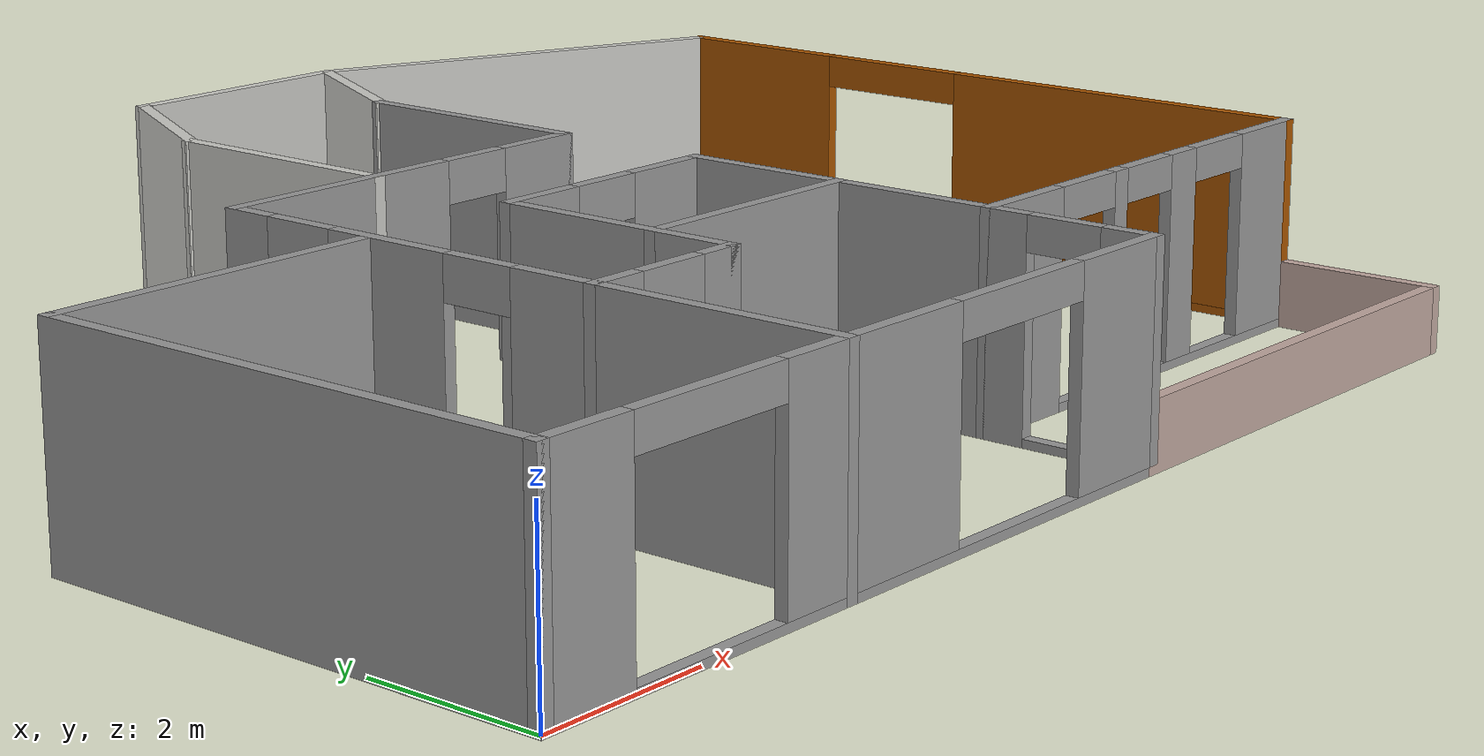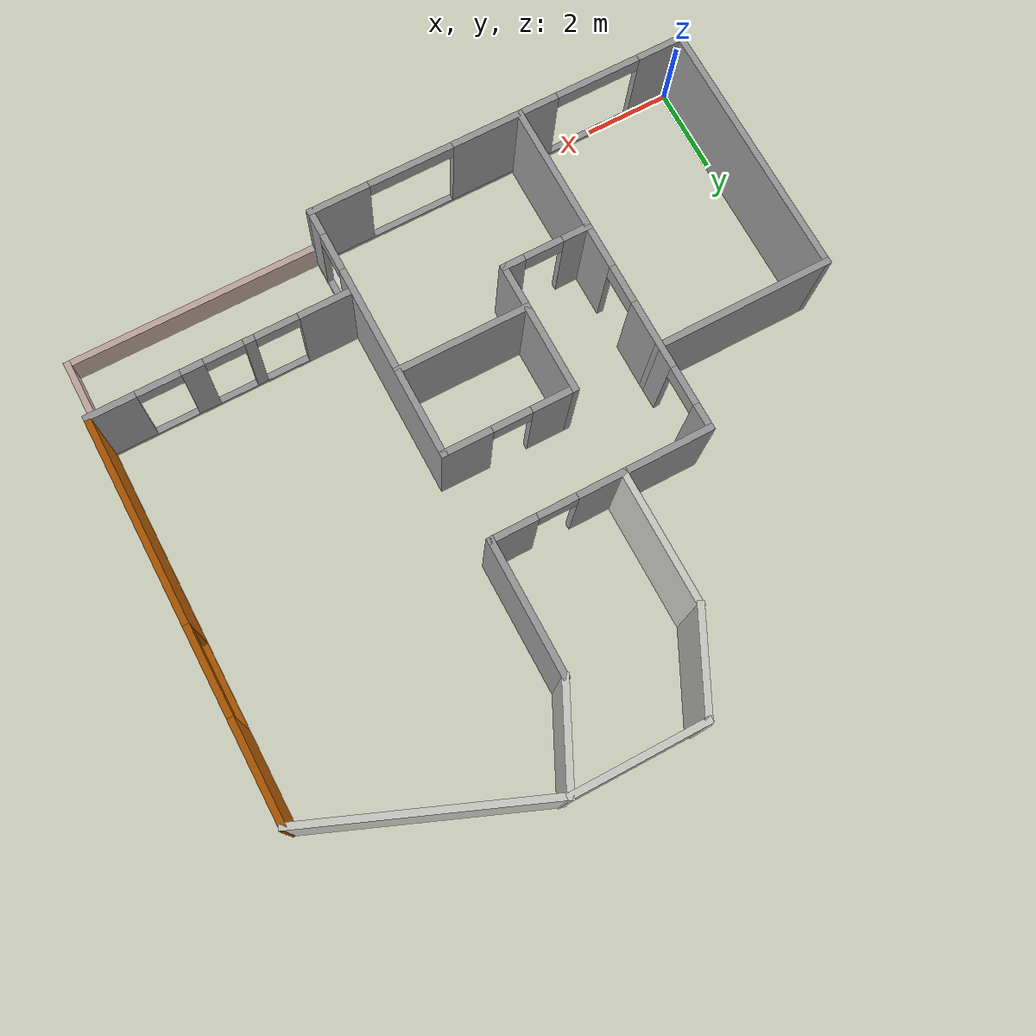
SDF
<?xml version='1.0'?>
<sdf version='1.6'>
  <model name='Building'>
    <pose frame=''>7.51124 6.51281 0 0 -0 0</pose>
    <link name='Wall_0'>
      <collision name='Wall_0_Collision'>
        <geometry>
          <box>
            <size>6.15 0.15 2.5</size>
          </box>
        </geometry>
        <pose frame=''>0 0 1.25 0 -0 0</pose>
      </collision>
      <visual name='Wall_0_Visual'>
        <pose frame=''>0 0 1.25 0 -0 0</pose>
        <geometry>
          <box>
            <size>6.15 0.15 2.5</size>
          </box>
        </geometry>
        <material>
          <script>
            <uri>file://media/materials/scripts/gazebo.material</uri>
            <name>Gazebo/Grey</name>
          </script>
          <ambient>1 1 1 1</ambient>
        </material>
        <meta>
          <layer>0</layer>
        </meta>
      </visual>
      <pose frame=''>-7.51124 -3.51281 0 0 -0 1.5708</pose>
    </link>
    <link name='Wall_12'>
      <pose frame=''>-3.01125 -6.51281 0 0 -0 0</pose>
      <visual name='Wall_12_Visual_0'>
        <pose frame=''>-3.99854 0 1.25 0 -0 0</pose>
        <geometry>
          <box>
            <size>1.15292 0.15 2.5</size>
          </box>
        </geometry>
        <material>
          <script>
            <uri>file://media/materials/scripts/gazebo.material</uri>
            <name>Gazebo/Grey</name>
          </script>
          <ambient>1 1 1 1</ambient>
        </material>
        <meta>
          <layer>0</layer>
        </meta>
      </visual>
      <collision name='Wall_12_Collision_0'>
        <geometry>
          <box>
            <size>1.15292 0.15 2.5</size>
          </box>
        </geometry>
        <pose frame=''>-3.99854 0 1.25 0 -0 0</pose>
      </collision>
      <visual name='Wall_12_Visual_1'>
        <pose frame=''>0.57646 0 0.05 0 -0 0</pose>
        <geometry>
          <box>
            <size>7.99708 0.15 0.1</size>
          </box>
        </geometry>
        <material>
          <script>
            <uri>file://media/materials/scripts/gazebo.material</uri>
            <name>Gazebo/Grey</name>
          </script>
          <ambient>1 1 1 1</ambient>
        </material>
        <meta>
          <layer>0</layer>
        </meta>
      </visual>
      <collision name='Wall_12_Collision_1'>
        <geometry>
          <box>
            <size>7.99708 0.15 0.1</size>
          </box>
        </geometry>
        <pose frame=''>0.57646 0 0.05 0 -0 0</pose>
      </collision>
      <visual name='Wall_12_Visual_2'>
        <pose frame=''>-0.143108 0 1.3 0 -0 0</pose>
        <geometry>
          <box>
            <size>2.55794 0.15 2.4</size>
          </box>
        </geometry>
        <material>
          <script>
            <uri>file://media/materials/scripts/gazebo.material</uri>
            <name>Gazebo/Grey</name>
          </script>
          <ambient>1 1 1 1</ambient>
        </material>
        <meta>
          <layer>0</layer>
        </meta>
      </visual>
      <collision name='Wall_12_Collision_2'>
        <geometry>
          <box>
            <size>2.55794 0.15 2.4</size>
          </box>
        </geometry>
        <pose frame=''>-0.143108 0 1.3 0 -0 0</pose>
      </collision>
      <visual name='Wall_12_Visual_3'>
        <pose frame=''>3.85543 0 1.3 0 -0 0</pose>
        <geometry>
          <box>
            <size>1.43914 0.15 2.4</size>
          </box>
        </geometry>
        <material>
          <script>
            <uri>file://media/materials/scripts/gazebo.material</uri>
            <name>Gazebo/Grey</name>
          </script>
          <ambient>1 1 1 1</ambient>
        </material>
        <meta>
          <layer>0</layer>
        </meta>
      </visual>
      <collision name='Wall_12_Collision_3'>
        <geometry>
          <box>
            <size>1.43914 0.15 2.4</size>
          </box>
        </geometry>
        <pose frame=''>3.85543 0 1.3 0 -0 0</pose>
      </collision>
      <visual name='Wall_12_Visual_4'>
        <pose frame=''>-2.42208 0 2.3 0 -0 0</pose>
        <geometry>
          <box>
            <size>2 0.15 0.4</size>
          </box>
        </geometry>
        <material>
          <script>
            <uri>file://media/materials/scripts/gazebo.material</uri>
            <name>Gazebo/Grey</name>
          </script>
          <ambient>1 1 1 1</ambient>
        </material>
        <meta>
          <layer>0</layer>
        </meta>
      </visual>
      <collision name='Wall_12_Collision_4'>
        <geometry>
          <box>
            <size>2 0.15 0.4</size>
          </box>
        </geometry>
        <pose frame=''>-2.42208 0 2.3 0 -0 0</pose>
      </collision>
      <visual name='Wall_12_Visual_5'>
        <pose frame=''>2.13586 0 2.3 0 -0 0</pose>
        <geometry>
          <box>
            <size>2 0.15 0.4</size>
          </box>
        </geometry>
        <material>
          <script>
            <uri>file://media/materials/scripts/gazebo.material</uri>
            <name>Gazebo/Grey</name>
          </script>
          <ambient>1 1 1 1</ambient>
        </material>
        <meta>
          <layer>0</layer>
        </meta>
      </visual>
      <collision name='Wall_12_Collision_5'>
        <geometry>
          <box>
            <size>2 0.15 0.4</size>
          </box>
        </geometry>
        <pose frame=''>2.13586 0 2.3 0 -0 0</pose>
      </collision>
    </link>
    <link name='Wall_26'>
      <pose frame=''>1.48876 -3.51281 0 0 0 -1.5708</pose>
      <visual name='Wall_26_Visual_0'>
        <pose frame=''>-0.780552 0 1.25 0 -0 0</pose>
        <geometry>
          <box>
            <size>4.58889 0.15 2.5</size>
          </box>
        </geometry>
        <material>
          <script>
            <uri>file://media/materials/scripts/gazebo.material</uri>
            <name>Gazebo/Grey</name>
          </script>
          <ambient>1 1 1 1</ambient>
        </material>
        <meta>
          <layer>0</layer>
        </meta>
      </visual>
      <collision name='Wall_26_Collision_0'>
        <geometry>
          <box>
            <size>4.58889 0.15 2.5</size>
          </box>
        </geometry>
        <pose frame=''>-0.780552 0 1.25 0 -0 0</pose>
      </collision>
      <visual name='Wall_26_Visual_1'>
        <pose frame=''>2.29445 0 0.05 0 -0 0</pose>
        <geometry>
          <box>
            <size>1.5611 0.15 0.1</size>
          </box>
        </geometry>
        <material>
          <script>
            <uri>file://media/materials/scripts/gazebo.material</uri>
            <name>Gazebo/Grey</name>
          </script>
          <ambient>1 1 1 1</ambient>
        </material>
        <meta>
          <layer>0</layer>
        </meta>
      </visual>
      <collision name='Wall_26_Collision_1'>
        <geometry>
          <box>
            <size>1.5611 0.15 0.1</size>
          </box>
        </geometry>
        <pose frame=''>2.29445 0 0.05 0 -0 0</pose>
      </collision>
      <visual name='Wall_26_Visual_2'>
        <pose frame=''>2.74445 0 1.3 0 -0 0</pose>
        <geometry>
          <box>
            <size>0.661105 0.15 2.4</size>
          </box>
        </geometry>
        <material>
          <script>
            <uri>file://media/materials/scripts/gazebo.material</uri>
            <name>Gazebo/Grey</name>
          </script>
          <ambient>1 1 1 1</ambient>
        </material>
        <meta>
          <layer>0</layer>
        </meta>
      </visual>
      <collision name='Wall_26_Collision_2'>
        <geometry>
          <box>
            <size>0.661105 0.15 2.4</size>
          </box>
        </geometry>
        <pose frame=''>2.74445 0 1.3 0 -0 0</pose>
      </collision>
      <visual name='Wall_26_Visual_3'>
        <pose frame=''>1.96389 0 2.3 0 -0 0</pose>
        <geometry>
          <box>
            <size>0.9 0.15 0.4</size>
          </box>
        </geometry>
        <material>
          <script>
            <uri>file://media/materials/scripts/gazebo.material</uri>
            <name>Gazebo/Grey</name>
          </script>
          <ambient>1 1 1 1</ambient>
        </material>
        <meta>
          <layer>0</layer>
        </meta>
      </visual>
      <collision name='Wall_26_Collision_3'>
        <geometry>
          <box>
            <size>0.9 0.15 0.4</size>
          </box>
        </geometry>
        <pose frame=''>1.96389 0 2.3 0 -0 0</pose>
      </collision>
    </link>
    <link name='Wall_28'>
      <collision name='Wall_28_Collision'>
        <geometry>
          <box>
            <size>3.15 0.15 2.5</size>
          </box>
        </geometry>
        <pose frame=''>0 0 1.25 0 -0 0</pose>
      </collision>
      <visual name='Wall_28_Visual'>
        <pose frame=''>0 0 1.25 0 -0 0</pose>
        <geometry>
          <box>
            <size>3.15 0.15 2.5</size>
          </box>
        </geometry>
        <material>
          <script>
            <uri>file://media/materials/scripts/gazebo.material</uri>
            <name>Gazebo/Grey</name>
          </script>
          <ambient>1 1 1 1</ambient>
        </material>
        <meta>
          <layer>0</layer>
        </meta>
      </visual>
      <pose frame=''>1.48876 2.98719 0 0 -0 1.5708</pose>
    </link>
    <link name='Wall_30'>
      <collision name='Wall_30_Collision'>
        <geometry>
          <box>
            <size>2.38607 0.15 2.5</size>
          </box>
        </geometry>
        <pose frame=''>0 0 1.25 0 -0 0</pose>
      </collision>
      <visual name='Wall_30_Visual'>
        <pose frame=''>0 0 1.25 0 -0 0</pose>
        <geometry>
          <box>
            <size>2.38607 0.15 2.5</size>
          </box>
        </geometry>
        <material>
          <script>
            <uri>file://media/materials/scripts/gazebo.material</uri>
            <name>Gazebo/CeilingTiled</name>
          </script>
          <ambient>1 1 1 1</ambient>
        </material>
        <meta>
          <layer>0</layer>
        </meta>
      </visual>
      <pose frame=''>1.98876 5.48719 0 0 -0 1.10715</pose>
    </link>
    <link name='Wall_32'>
      <pose frame=''>7.48876 -0.012811 0 0 0 -1.5708</pose>
      <visual name='Wall_32_Visual_0'>
        <pose frame=''>-3.40699 0 1.25 0 -0 0</pose>
        <geometry>
          <box>
            <size>2.33601 0.15 2.5</size>
          </box>
        </geometry>
        <material>
          <script>
            <uri>file://media/materials/scripts/gazebo.material</uri>
            <name>Gazebo/Grey</name>
          </script>
          <ambient>0.666667 0.333333 0 1</ambient>
        </material>
        <meta>
          <layer>0</layer>
        </meta>
      </visual>
      <collision name='Wall_32_Collision_0'>
        <geometry>
          <box>
            <size>2.33601 0.15 2.5</size>
          </box>
        </geometry>
        <pose frame=''>-3.40699 0 1.25 0 -0 0</pose>
      </collision>
      <visual name='Wall_32_Visual_1'>
        <pose frame=''>1.16801 0 0.05 0 -0 0</pose>
        <geometry>
          <box>
            <size>6.81399 0.15 0.1</size>
          </box>
        </geometry>
        <material>
          <script>
            <uri>file://media/materials/scripts/gazebo.material</uri>
            <name>Gazebo/Grey</name>
          </script>
          <ambient>0.666667 0.333333 0 1</ambient>
        </material>
        <meta>
          <layer>0</layer>
        </meta>
      </visual>
      <collision name='Wall_32_Collision_1'>
        <geometry>
          <box>
            <size>6.81399 0.15 0.1</size>
          </box>
        </geometry>
        <pose frame=''>1.16801 0 0.05 0 -0 0</pose>
      </collision>
      <visual name='Wall_32_Visual_2'>
        <pose frame=''>2.16801 0 1.3 0 -0 0</pose>
        <geometry>
          <box>
            <size>4.81399 0.15 2.4</size>
          </box>
        </geometry>
        <material>
          <script>
            <uri>file://media/materials/scripts/gazebo.material</uri>
            <name>Gazebo/Grey</name>
          </script>
          <ambient>0.666667 0.333333 0 1</ambient>
        </material>
        <meta>
          <layer>0</layer>
        </meta>
      </visual>
      <collision name='Wall_32_Collision_2'>
        <geometry>
          <box>
            <size>4.81399 0.15 2.4</size>
          </box>
        </geometry>
        <pose frame=''>2.16801 0 1.3 0 -0 0</pose>
      </collision>
      <visual name='Wall_32_Visual_3'>
        <pose frame=''>-1.23899 0 2.3 0 -0 0</pose>
        <geometry>
          <box>
            <size>2 0.15 0.4</size>
          </box>
        </geometry>
        <material>
          <script>
            <uri>file://media/materials/scripts/gazebo.material</uri>
            <name>Gazebo/Grey</name>
          </script>
          <ambient>0.666667 0.333333 0 1</ambient>
        </material>
        <meta>
          <layer>0</layer>
        </meta>
      </visual>
      <collision name='Wall_32_Collision_3'>
        <geometry>
          <box>
            <size>2 0.15 0.4</size>
          </box>
        </geometry>
        <pose frame=''>-1.23899 0 2.3 0 -0 0</pose>
      </collision>
    </link>
    <link name='Wall_34'>
      <collision name='Wall_34_Collision'>
        <geometry>
          <box>
            <size>6.15 0.15 0.8</size>
          </box>
        </geometry>
        <pose frame=''>0 0 0.4 0 -0 0</pose>
      </collision>
      <visual name='Wall_34_Visual'>
        <pose frame=''>0 0 0.4 0 -0 0</pose>
        <geometry>
          <box>
            <size>6.15 0.15 0.8</size>
          </box>
        </geometry>
        <material>
          <script>
            <uri>file://media/materials/scripts/gazebo.material</uri>
            <name>Gazebo/Grey</name>
          </script>
          <ambient>0.760784 0.662745 0.627451 1</ambient>
        </material>
        <meta>
          <layer>0</layer>
        </meta>
      </visual>
      <pose frame=''>4.48876 -6.51281 0 0 -0 0</pose>
    </link>
    <link name='Wall_36'>
      <pose frame=''>4.48876 -4.51281 0 0 -0 0</pose>
      <visual name='Wall_36_Visual_0'>
        <pose frame=''>-2.40473 0 1.25 0 -0 0</pose>
        <geometry>
          <box>
            <size>1.34055 0.15 2.5</size>
          </box>
        </geometry>
        <material>
          <script>
            <uri>file://media/materials/scripts/gazebo.material</uri>
            <name>Gazebo/Grey</name>
          </script>
          <ambient>1 1 1 1</ambient>
        </material>
        <meta>
          <layer>0</layer>
        </meta>
      </visual>
      <collision name='Wall_36_Collision_0'>
        <geometry>
          <box>
            <size>1.34055 0.15 2.5</size>
          </box>
        </geometry>
        <pose frame=''>-2.40473 0 1.25 0 -0 0</pose>
      </collision>
      <visual name='Wall_36_Visual_1'>
        <pose frame=''>0.670272 0 0.05 0 -0 0</pose>
        <geometry>
          <box>
            <size>4.80945 0.15 0.1</size>
          </box>
        </geometry>
        <material>
          <script>
            <uri>file://media/materials/scripts/gazebo.material</uri>
            <name>Gazebo/Grey</name>
          </script>
          <ambient>1 1 1 1</ambient>
        </material>
        <meta>
          <layer>0</layer>
        </meta>
      </visual>
      <collision name='Wall_36_Collision_1'>
        <geometry>
          <box>
            <size>4.80945 0.15 0.1</size>
          </box>
        </geometry>
        <pose frame=''>0.670272 0 0.05 0 -0 0</pose>
      </collision>
      <visual name='Wall_36_Visual_2'>
        <pose frame=''>-0.610532 0 1.3 0 -0 0</pose>
        <geometry>
          <box>
            <size>0.247846 0.15 2.4</size>
          </box>
        </geometry>
        <material>
          <script>
            <uri>file://media/materials/scripts/gazebo.material</uri>
            <name>Gazebo/Grey</name>
          </script>
          <ambient>1 1 1 1</ambient>
        </material>
        <meta>
          <layer>0</layer>
        </meta>
      </visual>
      <collision name='Wall_36_Collision_2'>
        <geometry>
          <box>
            <size>0.247846 0.15 2.4</size>
          </box>
        </geometry>
        <pose frame=''>-0.610532 0 1.3 0 -0 0</pose>
      </collision>
      <visual name='Wall_36_Visual_3'>
        <pose frame=''>0.670143 0 1.3 0 -0 0</pose>
        <geometry>
          <box>
            <size>0.513504 0.15 2.4</size>
          </box>
        </geometry>
        <material>
          <script>
            <uri>file://media/materials/scripts/gazebo.material</uri>
            <name>Gazebo/Grey</name>
          </script>
          <ambient>1 1 1 1</ambient>
        </material>
        <meta>
          <layer>0</layer>
        </meta>
      </visual>
      <collision name='Wall_36_Collision_3'>
        <geometry>
          <box>
            <size>0.513504 0.15 2.4</size>
          </box>
        </geometry>
        <pose frame=''>0.670143 0 1.3 0 -0 0</pose>
      </collision>
      <visual name='Wall_36_Visual_4'>
        <pose frame=''>2.50095 0 1.3 0 -0 0</pose>
        <geometry>
          <box>
            <size>1.1481 0.15 2.4</size>
          </box>
        </geometry>
        <material>
          <script>
            <uri>file://media/materials/scripts/gazebo.material</uri>
            <name>Gazebo/Grey</name>
          </script>
          <ambient>1 1 1 1</ambient>
        </material>
        <meta>
          <layer>0</layer>
        </meta>
      </visual>
      <collision name='Wall_36_Collision_4'>
        <geometry>
          <box>
            <size>1.1481 0.15 2.4</size>
          </box>
        </geometry>
        <pose frame=''>2.50095 0 1.3 0 -0 0</pose>
      </collision>
      <visual name='Wall_36_Visual_5'>
        <pose frame=''>-1.23446 0 2.3 0 -0 0</pose>
        <geometry>
          <box>
            <size>1 0.15 0.4</size>
          </box>
        </geometry>
        <material>
          <script>
            <uri>file://media/materials/scripts/gazebo.material</uri>
            <name>Gazebo/Grey</name>
          </script>
          <ambient>1 1 1 1</ambient>
        </material>
        <meta>
          <layer>0</layer>
        </meta>
      </visual>
      <collision name='Wall_36_Collision_5'>
        <geometry>
          <box>
            <size>1 0.15 0.4</size>
          </box>
        </geometry>
        <pose frame=''>-1.23446 0 2.3 0 -0 0</pose>
      </collision>
      <visual name='Wall_36_Visual_6'>
        <pose frame=''>-0.036609 0 2.3 0 -0 0</pose>
        <geometry>
          <box>
            <size>0.9 0.15 0.4</size>
          </box>
        </geometry>
        <material>
          <script>
            <uri>file://media/materials/scripts/gazebo.material</uri>
            <name>Gazebo/Grey</name>
          </script>
          <ambient>1 1 1 1</ambient>
        </material>
        <meta>
          <layer>0</layer>
        </meta>
      </visual>
      <collision name='Wall_36_Collision_6'>
        <geometry>
          <box>
            <size>0.9 0.15 0.4</size>
          </box>
        </geometry>
        <pose frame=''>-0.036609 0 2.3 0 -0 0</pose>
      </collision>
      <visual name='Wall_36_Visual_7'>
        <pose frame=''>1.4269 0 2.3 0 -0 0</pose>
        <geometry>
          <box>
            <size>1 0.15 0.4</size>
          </box>
        </geometry>
        <material>
          <script>
            <uri>file://media/materials/scripts/gazebo.material</uri>
            <name>Gazebo/Grey</name>
          </script>
          <ambient>1 1 1 1</ambient>
        </material>
        <meta>
          <layer>0</layer>
        </meta>
      </visual>
      <collision name='Wall_36_Collision_7'>
        <geometry>
          <box>
            <size>1 0.15 0.4</size>
          </box>
        </geometry>
        <pose frame=''>1.4269 0 2.3 0 -0 0</pose>
      </collision>
    </link>
    <link name='Wall_38'>
      <pose frame=''>-1.01124 1.48719 0 0 -0 0</pose>
      <visual name='Wall_38_Visual_0'>
        <pose frame=''>-1.0103 0 1.25 0 -0 0</pose>
        <geometry>
          <box>
            <size>3.1294 0.15 2.5</size>
          </box>
        </geometry>
        <material>
          <script>
            <uri>file://media/materials/scripts/gazebo.material</uri>
            <name>Gazebo/Grey</name>
          </script>
          <ambient>1 1 1 1</ambient>
        </material>
        <meta>
          <layer>0</layer>
        </meta>
      </visual>
      <collision name='Wall_38_Collision_0'>
        <geometry>
          <box>
            <size>3.1294 0.15 2.5</size>
          </box>
        </geometry>
        <pose frame=''>-1.0103 0 1.25 0 -0 0</pose>
      </collision>
      <visual name='Wall_38_Visual_1'>
        <pose frame=''>2.0147 0 1.25 0 -0 0</pose>
        <geometry>
          <box>
            <size>1.1206 0.15 2.5</size>
          </box>
        </geometry>
        <material>
          <script>
            <uri>file://media/materials/scripts/gazebo.material</uri>
            <name>Gazebo/Grey</name>
          </script>
          <ambient>1 1 1 1</ambient>
        </material>
        <meta>
          <layer>0</layer>
        </meta>
      </visual>
      <collision name='Wall_38_Collision_1'>
        <geometry>
          <box>
            <size>1.1206 0.15 2.5</size>
          </box>
        </geometry>
        <pose frame=''>2.0147 0 1.25 0 -0 0</pose>
      </collision>
      <visual name='Wall_38_Visual_2'>
        <pose frame=''>1.0044 0 2.25 0 -0 0</pose>
        <geometry>
          <box>
            <size>0.9 0.15 0.5</size>
          </box>
        </geometry>
        <material>
          <script>
            <uri>file://media/materials/scripts/gazebo.material</uri>
            <name>Gazebo/Grey</name>
          </script>
          <ambient>1 1 1 1</ambient>
        </material>
        <meta>
          <layer>0</layer>
        </meta>
      </visual>
      <collision name='Wall_38_Collision_2'>
        <geometry>
          <box>
            <size>0.9 0.15 0.5</size>
          </box>
        </geometry>
        <pose frame=''>1.0044 0 2.25 0 -0 0</pose>
      </collision>
    </link>
    <link name='Wall_4'>
      <pose frame=''>-3.51125 -2.51281 0 0 -0 1.5708</pose>
      <visual name='Wall_4_Visual_0'>
        <pose frame=''>-2.02622 0 1.25 0 -0 0</pose>
        <geometry>
          <box>
            <size>4.09757 0.15 2.5</size>
          </box>
        </geometry>
        <material>
          <script>
            <uri>file://media/materials/scripts/gazebo.material</uri>
            <name>Gazebo/Grey</name>
          </script>
          <ambient>1 1 1 1</ambient>
        </material>
        <meta>
          <layer>0</layer>
        </meta>
      </visual>
      <collision name='Wall_4_Collision_0'>
        <geometry>
          <box>
            <size>4.09757 0.15 2.5</size>
          </box>
        </geometry>
        <pose frame=''>-2.02622 0 1.25 0 -0 0</pose>
      </collision>
      <visual name='Wall_4_Visual_1'>
        <pose frame=''>1.72967 0 1.25 0 -0 0</pose>
        <geometry>
          <box>
            <size>1.6142 0.15 2.5</size>
          </box>
        </geometry>
        <material>
          <script>
            <uri>file://media/materials/scripts/gazebo.material</uri>
            <name>Gazebo/Grey</name>
          </script>
          <ambient>1 1 1 1</ambient>
        </material>
        <meta>
          <layer>0</layer>
        </meta>
      </visual>
      <collision name='Wall_4_Collision_1'>
        <geometry>
          <box>
            <size>1.6142 0.15 2.5</size>
          </box>
        </geometry>
        <pose frame=''>1.72967 0 1.25 0 -0 0</pose>
      </collision>
      <visual name='Wall_4_Visual_2'>
        <pose frame=''>3.75588 0 1.25 0 -0 0</pose>
        <geometry>
          <box>
            <size>0.638237 0.15 2.5</size>
          </box>
        </geometry>
        <material>
          <script>
            <uri>file://media/materials/scripts/gazebo.material</uri>
            <name>Gazebo/Grey</name>
          </script>
          <ambient>1 1 1 1</ambient>
        </material>
        <meta>
          <layer>0</layer>
        </meta>
      </visual>
      <collision name='Wall_4_Collision_2'>
        <geometry>
          <box>
            <size>0.638237 0.15 2.5</size>
          </box>
        </geometry>
        <pose frame=''>3.75588 0 1.25 0 -0 0</pose>
      </collision>
      <visual name='Wall_4_Visual_3'>
        <pose frame=''>0.472567 0 2.25 0 -0 0</pose>
        <geometry>
          <box>
            <size>0.9 0.15 0.5</size>
          </box>
        </geometry>
        <material>
          <script>
            <uri>file://media/materials/scripts/gazebo.material</uri>
            <name>Gazebo/Grey</name>
          </script>
          <ambient>1 1 1 1</ambient>
        </material>
        <meta>
          <layer>0</layer>
        </meta>
      </visual>
      <collision name='Wall_4_Collision_3'>
        <geometry>
          <box>
            <size>0.9 0.15 0.5</size>
          </box>
        </geometry>
        <pose frame=''>0.472567 0 2.25 0 -0 0</pose>
      </collision>
      <visual name='Wall_4_Visual_4'>
        <pose frame=''>2.98676 0 2.25 0 -0 0</pose>
        <geometry>
          <box>
            <size>0.9 0.15 0.5</size>
          </box>
        </geometry>
        <material>
          <script>
            <uri>file://media/materials/scripts/gazebo.material</uri>
            <name>Gazebo/Grey</name>
          </script>
          <ambient>1 1 1 1</ambient>
        </material>
        <meta>
          <layer>0</layer>
        </meta>
      </visual>
      <collision name='Wall_4_Collision_4'>
        <geometry>
          <box>
            <size>0.9 0.15 0.5</size>
          </box>
        </geometry>
        <pose frame=''>2.98676 0 2.25 0 -0 0</pose>
      </collision>
    </link>
    <link name='Wall_40'>
      <pose frame=''>-0.011245 -0.512811 0 0 -0 0</pose>
      <visual name='Wall_40_Visual_0'>
        <pose frame=''>-1.04047 0 1.25 0 -0 0</pose>
        <geometry>
          <box>
            <size>1.06906 0.15 2.5</size>
          </box>
        </geometry>
        <material>
          <script>
            <uri>file://media/materials/scripts/gazebo.material</uri>
            <name>Gazebo/Grey</name>
          </script>
          <ambient>1 1 1 1</ambient>
        </material>
        <meta>
          <layer>0</layer>
        </meta>
      </visual>
      <collision name='Wall_40_Collision_0'>
        <geometry>
          <box>
            <size>1.06906 0.15 2.5</size>
          </box>
        </geometry>
        <pose frame=''>-1.04047 0 1.25 0 -0 0</pose>
      </collision>
      <visual name='Wall_40_Visual_1'>
        <pose frame=''>0.984528 0 1.25 0 -0 0</pose>
        <geometry>
          <box>
            <size>1.18094 0.15 2.5</size>
          </box>
        </geometry>
        <material>
          <script>
            <uri>file://media/materials/scripts/gazebo.material</uri>
            <name>Gazebo/Grey</name>
          </script>
          <ambient>1 1 1 1</ambient>
        </material>
        <meta>
          <layer>0</layer>
        </meta>
      </visual>
      <collision name='Wall_40_Collision_1'>
        <geometry>
          <box>
            <size>1.18094 0.15 2.5</size>
          </box>
        </geometry>
        <pose frame=''>0.984528 0 1.25 0 -0 0</pose>
      </collision>
      <visual name='Wall_40_Visual_2'>
        <pose frame=''>-0.055943 0 2.25 0 -0 0</pose>
        <geometry>
          <box>
            <size>0.9 0.15 0.5</size>
          </box>
        </geometry>
        <material>
          <script>
            <uri>file://media/materials/scripts/gazebo.material</uri>
            <name>Gazebo/Grey</name>
          </script>
          <ambient>1 1 1 1</ambient>
        </material>
        <meta>
          <layer>0</layer>
        </meta>
      </visual>
      <collision name='Wall_40_Collision_2'>
        <geometry>
          <box>
            <size>0.9 0.15 0.5</size>
          </box>
        </geometry>
        <pose frame=''>-0.055943 0 2.25 0 -0 0</pose>
      </collision>
    </link>
    <link name='Wall_42'>
      <collision name='Wall_42_Collision'>
        <geometry>
          <box>
            <size>3.15 0.15 2.5</size>
          </box>
        </geometry>
        <pose frame=''>0 0 1.25 0 -0 0</pose>
      </collision>
      <visual name='Wall_42_Visual'>
        <pose frame=''>0 0 1.25 0 -0 0</pose>
        <geometry>
          <box>
            <size>3.15 0.15 2.5</size>
          </box>
        </geometry>
        <material>
          <script>
            <uri>file://media/materials/scripts/gazebo.material</uri>
            <name>Gazebo/Grey</name>
          </script>
          <ambient>1 1 1 1</ambient>
        </material>
        <meta>
          <layer>0</layer>
        </meta>
      </visual>
      <pose frame=''>-0.011245 -2.51281 0 0 -0 0</pose>
    </link>
    <link name='Wall_44'>
      <collision name='Wall_44_Collision'>
        <geometry>
          <box>
            <size>3.15 0.15 2.5</size>
          </box>
        </geometry>
        <pose frame=''>0 0 1.25 0 -0 0</pose>
      </collision>
      <visual name='Wall_44_Visual'>
        <pose frame=''>0 0 1.25 0 -0 0</pose>
        <geometry>
          <box>
            <size>3.15 0.15 2.5</size>
          </box>
        </geometry>
        <material>
          <script>
            <uri>file://media/materials/scripts/gazebo.material</uri>
            <name>Gazebo/Grey</name>
          </script>
          <ambient>1 1 1 1</ambient>
        </material>
        <meta>
          <layer>0</layer>
        </meta>
      </visual>
      <pose frame=''>-1.51124 -2.01281 0 0 0 -1.5708</pose>
    </link>
    <link name='Wall_46'>
      <pose frame=''>-2.51125 -3.51281 0 0 -0 0</pose>
      <visual name='Wall_46_Visual_0'>
        <pose frame=''>-0.727172 0 1.25 0 -0 0</pose>
        <geometry>
          <box>
            <size>0.695655 0.15 2.5</size>
          </box>
        </geometry>
        <material>
          <script>
            <uri>file://media/materials/scripts/gazebo.material</uri>
            <name>Gazebo/Grey</name>
          </script>
          <ambient>1 1 1 1</ambient>
        </material>
        <meta>
          <layer>0</layer>
        </meta>
      </visual>
      <collision name='Wall_46_Collision_0'>
        <geometry>
          <box>
            <size>0.695655 0.15 2.5</size>
          </box>
        </geometry>
        <pose frame=''>-0.727172 0 1.25 0 -0 0</pose>
      </collision>
      <visual name='Wall_46_Visual_1'>
        <pose frame=''>0.797828 0 1.25 0 -0 0</pose>
        <geometry>
          <box>
            <size>0.554345 0.15 2.5</size>
          </box>
        </geometry>
        <material>
          <script>
            <uri>file://media/materials/scripts/gazebo.material</uri>
            <name>Gazebo/Grey</name>
          </script>
          <ambient>1 1 1 1</ambient>
        </material>
        <meta>
          <layer>0</layer>
        </meta>
      </visual>
      <collision name='Wall_46_Collision_1'>
        <geometry>
          <box>
            <size>0.554345 0.15 2.5</size>
          </box>
        </geometry>
        <pose frame=''>0.797828 0 1.25 0 -0 0</pose>
      </collision>
      <visual name='Wall_46_Visual_2'>
        <pose frame=''>0.070655 0 2.25 0 -0 0</pose>
        <geometry>
          <box>
            <size>0.9 0.15 0.5</size>
          </box>
        </geometry>
        <material>
          <script>
            <uri>file://media/materials/scripts/gazebo.material</uri>
            <name>Gazebo/Grey</name>
          </script>
          <ambient>1 1 1 1</ambient>
        </material>
        <meta>
          <layer>0</layer>
        </meta>
      </visual>
      <collision name='Wall_46_Collision_2'>
        <geometry>
          <box>
            <size>0.9 0.15 0.5</size>
          </box>
        </geometry>
        <pose frame=''>0.070655 0 2.25 0 -0 0</pose>
      </collision>
    </link>
    <link name='Wall_48'>
      <collision name='Wall_48_Collision'>
        <geometry>
          <box>
            <size>4.15 0.15 2.5</size>
          </box>
        </geometry>
        <pose frame=''>0 0 1.25 0 -0 0</pose>
      </collision>
      <visual name='Wall_48_Visual'>
        <pose frame=''>0 0 1.25 0 -0 0</pose>
        <geometry>
          <box>
            <size>4.15 0.15 2.5</size>
          </box>
        </geometry>
        <material>
          <script>
            <uri>file://media/materials/scripts/gazebo.material</uri>
            <name>Gazebo/Grey</name>
          </script>
          <ambient>1 1 1 1</ambient>
        </material>
        <meta>
          <layer>0</layer>
        </meta>
      </visual>
      <pose frame=''>-5.51124 -0.512811 0 0 -0 0</pose>
    </link>
    <link name='Wall_50'>
      <collision name='Wall_50_Collision'>
        <geometry>
          <box>
            <size>3.15 0.15 2.5</size>
          </box>
        </geometry>
        <pose frame=''>0 0 1.25 0 -0 0</pose>
      </collision>
      <visual name='Wall_50_Visual'>
        <pose frame=''>0 0 1.25 0 -0 0</pose>
        <geometry>
          <box>
            <size>3.15 0.15 2.5</size>
          </box>
        </geometry>
        <material>
          <script>
            <uri>file://media/materials/scripts/gazebo.material</uri>
            <name>Gazebo/CeilingTiled</name>
          </script>
          <ambient>1 1 1 1</ambient>
        </material>
        <meta>
          <layer>0</layer>
        </meta>
      </visual>
      <pose frame=''>0.988755 6.48719 0 0 -0 0</pose>
    </link>
    <link name='Wall_52'>
      <collision name='Wall_52_Collision'>
        <geometry>
          <box>
            <size>5.53517 0.15 2.5</size>
          </box>
        </geometry>
        <pose frame=''>0 0 1.25 0 -0 0</pose>
      </collision>
      <visual name='Wall_52_Visual'>
        <pose frame=''>0 0 1.25 0 -0 0</pose>
        <geometry>
          <box>
            <size>5.53517 0.15 2.5</size>
          </box>
        </geometry>
        <material>
          <script>
            <uri>file://media/materials/scripts/gazebo.material</uri>
            <name>Gazebo/CeilingTiled</name>
          </script>
          <ambient>1 1 1 1</ambient>
        </material>
        <meta>
          <layer>0</layer>
        </meta>
      </visual>
      <pose frame=''>4.98876 5.48719 0 0 0 -0.380506</pose>
    </link>
    <link name='Wall_54'>
      <collision name='Wall_54_Collision'>
        <geometry>
          <box>
            <size>2.15 0.15 0.8</size>
          </box>
        </geometry>
        <pose frame=''>0 0 0.4 0 -0 0</pose>
      </collision>
      <visual name='Wall_54_Visual'>
        <pose frame=''>0 0 0.4 0 -0 0</pose>
        <geometry>
          <box>
            <size>2.15 0.15 0.8</size>
          </box>
        </geometry>
        <material>
          <script>
            <uri>file://media/materials/scripts/gazebo.material</uri>
            <name>Gazebo/Grey</name>
          </script>
          <ambient>0.760784 0.662745 0.627451 1</ambient>
        </material>
        <meta>
          <layer>0</layer>
        </meta>
      </visual>
      <pose frame=''>7.48876 -5.51281 0 0 0 -1.5708</pose>
    </link>
    <link name='Wall_6'>
      <collision name='Wall_6_Collision'>
        <geometry>
          <box>
            <size>2.38607 0.15 2.5</size>
          </box>
        </geometry>
        <pose frame=''>0 0 1.25 0 -0 0</pose>
      </collision>
      <visual name='Wall_6_Visual'>
        <pose frame=''>0 0 1.25 0 -0 0</pose>
        <geometry>
          <box>
            <size>2.38607 0.15 2.5</size>
          </box>
        </geometry>
        <material>
          <script>
            <uri>file://media/materials/scripts/gazebo.material</uri>
            <name>Gazebo/CeilingTiled</name>
          </script>
          <ambient>1 1 1 1</ambient>
        </material>
        <meta>
          <layer>0</layer>
        </meta>
      </visual>
      <pose frame=''>-1.01124 5.48719 0 0 -0 1.10715</pose>
    </link>
    <link name='Wall_7'>
      <collision name='Wall_7_Collision'>
        <geometry>
          <box>
            <size>0.15 0.15 2.5</size>
          </box>
        </geometry>
        <pose frame=''>0 0 1.25 0 -0 0</pose>
      </collision>
      <visual name='Wall_7_Visual'>
        <pose frame=''>0 0 1.25 0 -0 0</pose>
        <geometry>
          <box>
            <size>0.15 0.15 2.5</size>
          </box>
        </geometry>
        <material>
          <script>
            <uri>file://media/materials/scripts/gazebo.material</uri>
            <name>Gazebo/Grey</name>
          </script>
          <ambient>1 1 1 1</ambient>
        </material>
        <meta>
          <layer>0</layer>
        </meta>
      </visual>
      <pose frame=''>-0.511245 6.48719 0 0 -0 0</pose>
    </link>
    <link name='Wall_9'>
      <collision name='Wall_9_Collision'>
        <geometry>
          <box>
            <size>3.15 0.15 2.5</size>
          </box>
        </geometry>
        <pose frame=''>0 0 1.25 0 -0 0</pose>
      </collision>
      <visual name='Wall_9_Visual'>
        <pose frame=''>0 0 1.25 0 -0 0</pose>
        <geometry>
          <box>
            <size>3.15 0.15 2.5</size>
          </box>
        </geometry>
        <material>
          <script>
            <uri>file://media/materials/scripts/gazebo.material</uri>
            <name>Gazebo/CeilingTiled</name>
          </script>
          <ambient>1 1 1 1</ambient>
        </material>
        <meta>
          <layer>0</layer>
        </meta>
      </visual>
      <pose frame=''>-1.51124 2.98719 0 0 0 -1.5708</pose>
    </link>
    <static>1</static>
  </model>
</sdf>
